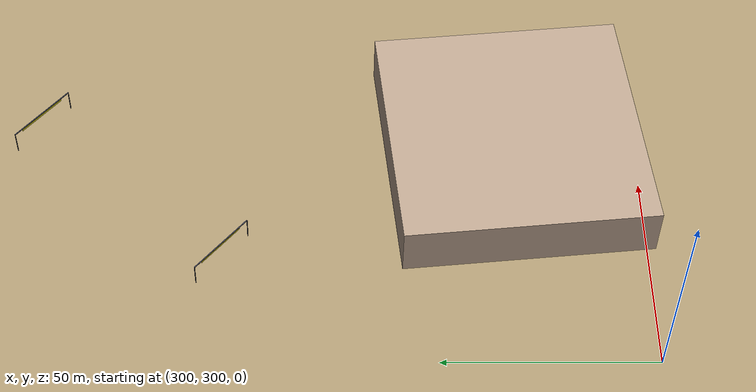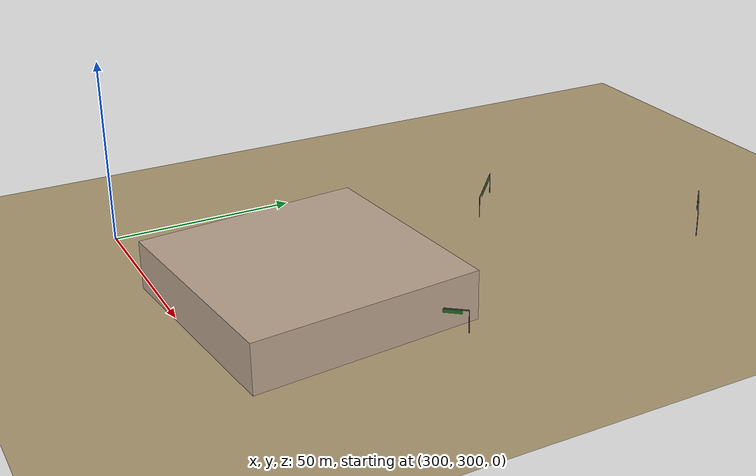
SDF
<sdf version="1.9">
 <world name="crossroad_world">
  <model name="ground_plane">
   <static>true</static>
   <pose>0 0 -0.05 0 0 0</pose>
   <link name="link">
    <collision name="collision">
     <geometry><plane><normal>0 0 1</normal><size>10000 10000</size></plane></geometry>
    </collision>
    <visual name="visual">
     <geometry><plane><normal>0 0 1</normal><size>15000 15000</size></plane></geometry>
     <material><ambient>0.68 0.60 0.45 1</ambient><diffuse>0.68 0.60 0.45 1</diffuse></material>
    </visual>
   </link>
  </model>
  <model name="gantry_83">
   <static>true</static>
   <pose>368.164 444.929 0 0 0 2.425</pose>
   <link name="link">
    <visual name="post_l">
     <pose>-8.900 0 2.925 0 0 0</pose>
     <geometry><cylinder><radius>0.1</radius><length>5.85</length></cylinder></geometry>
     <material><ambient>0.30 0.30 0.35 1</ambient><diffuse>0.30 0.30 0.35 1</diffuse></material>
    </visual>
    <visual name="post_r">
     <pose>8.900 0 2.925 0 0 0</pose>
     <geometry><cylinder><radius>0.1</radius><length>5.85</length></cylinder></geometry>
     <material><ambient>0.30 0.30 0.35 1</ambient><diffuse>0.30 0.30 0.35 1</diffuse></material>
    </visual>
    <visual name="beam">
     <pose>0 0 6.000 0 0 0</pose>
     <geometry><box><size>17.800 0.22 0.22</size></box></geometry>
     <material><ambient>0.30 0.30 0.35 1</ambient><diffuse>0.30 0.30 0.35 1</diffuse></material>
    </visual>
    <visual name="sign_border">
     <pose>0 -0.14 5.450 0 0 0</pose>
     <geometry><box><size>12.896 0.04 0.92</size></box></geometry>
     <material><ambient>0.90 0.85 0.10 1</ambient><diffuse>0.90 0.85 0.10 1</diffuse></material>
    </visual>
    <visual name="sign_panel">
     <pose>0 -0.15 5.450 0 0 0</pose>
     <geometry><box><size>12.816 0.05 0.86</size></box></geometry>
     <material><ambient>0.05 0.38 0.10 1</ambient><diffuse>0.05 0.38 0.10 1</diffuse></material>
    </visual>
    <collision name="col_post_l">
     <pose>-8.900 0 2.925 0 0 0</pose>
     <geometry><cylinder><radius>0.1</radius><length>5.85</length></cylinder></geometry>
    </collision>
    <collision name="col_post_r">
     <pose>8.900 0 2.925 0 0 0</pose>
     <geometry><cylinder><radius>0.1</radius><length>5.85</length></cylinder></geometry>
    </collision>
    <collision name="col_beam">
     <pose>0 0 6.000 0 0 0</pose>
     <geometry><box><size>17.800 0.22 0.22</size></box></geometry>
    </collision>
   </link>
  </model>
  <model name="gantry_84">
   <static>true</static>
   <pose>328.745 399.695 0 0 0 2.425</pose>
   <link name="link">
    <visual name="post_l">
     <pose>-8.900 0 2.925 0 0 0</pose>
     <geometry><cylinder><radius>0.1</radius><length>5.85</length></cylinder></geometry>
     <material><ambient>0.30 0.30 0.35 1</ambient><diffuse>0.30 0.30 0.35 1</diffuse></material>
    </visual>
    <visual name="post_r">
     <pose>8.900 0 2.925 0 0 0</pose>
     <geometry><cylinder><radius>0.1</radius><length>5.85</length></cylinder></geometry>
     <material><ambient>0.30 0.30 0.35 1</ambient><diffuse>0.30 0.30 0.35 1</diffuse></material>
    </visual>
    <visual name="beam">
     <pose>0 0 6.000 0 0 0</pose>
     <geometry><box><size>17.800 0.22 0.22</size></box></geometry>
     <material><ambient>0.30 0.30 0.35 1</ambient><diffuse>0.30 0.30 0.35 1</diffuse></material>
    </visual>
    <visual name="sign_border">
     <pose>0 -0.14 5.450 0 0 0</pose>
     <geometry><box><size>12.896 0.04 0.92</size></box></geometry>
     <material><ambient>0.90 0.85 0.10 1</ambient><diffuse>0.90 0.85 0.10 1</diffuse></material>
    </visual>
    <visual name="sign_panel">
     <pose>0 -0.15 5.450 0 0 0</pose>
     <geometry><box><size>12.816 0.05 0.86</size></box></geometry>
     <material><ambient>0.05 0.38 0.10 1</ambient><diffuse>0.05 0.38 0.10 1</diffuse></material>
    </visual>
    <collision name="col_post_l">
     <pose>-8.900 0 2.925 0 0 0</pose>
     <geometry><cylinder><radius>0.1</radius><length>5.85</length></cylinder></geometry>
    </collision>
    <collision name="col_post_r">
     <pose>8.900 0 2.925 0 0 0</pose>
     <geometry><cylinder><radius>0.1</radius><length>5.85</length></cylinder></geometry>
    </collision>
    <collision name="col_beam">
     <pose>0 0 6.000 0 0 0</pose>
     <geometry><box><size>17.800 0.22 0.22</size></box></geometry>
    </collision>
   </link>
  </model>
  <model name="gantry_115">
   <static>true</static>
   <pose>386.689 353.394 0 0 0 0.883</pose>
   <link name="link">
    <visual name="post_l">
     <pose>-5.700 0 2.925 0 0 0</pose>
     <geometry><cylinder><radius>0.1</radius><length>5.85</length></cylinder></geometry>
     <material><ambient>0.30 0.30 0.35 1</ambient><diffuse>0.30 0.30 0.35 1</diffuse></material>
    </visual>
    <visual name="post_r">
     <pose>5.700 0 2.925 0 0 0</pose>
     <geometry><cylinder><radius>0.1</radius><length>5.85</length></cylinder></geometry>
     <material><ambient>0.30 0.30 0.35 1</ambient><diffuse>0.30 0.30 0.35 1</diffuse></material>
    </visual>
    <visual name="beam">
     <pose>0 0 6.000 0 0 0</pose>
     <geometry><box><size>11.400 0.22 0.22</size></box></geometry>
     <material><ambient>0.30 0.30 0.35 1</ambient><diffuse>0.30 0.30 0.35 1</diffuse></material>
    </visual>
    <visual name="sign_border">
     <pose>0 -0.14 5.450 0 0 0</pose>
     <geometry><box><size>8.288 0.04 0.92</size></box></geometry>
     <material><ambient>0.90 0.85 0.10 1</ambient><diffuse>0.90 0.85 0.10 1</diffuse></material>
    </visual>
    <visual name="sign_panel">
     <pose>0 -0.15 5.450 0 0 0</pose>
     <geometry><box><size>8.208 0.05 0.86</size></box></geometry>
     <material><ambient>0.05 0.38 0.10 1</ambient><diffuse>0.05 0.38 0.10 1</diffuse></material>
    </visual>
    <collision name="col_post_l">
     <pose>-5.700 0 2.925 0 0 0</pose>
     <geometry><cylinder><radius>0.1</radius><length>5.85</length></cylinder></geometry>
    </collision>
    <collision name="col_post_r">
     <pose>5.700 0 2.925 0 0 0</pose>
     <geometry><cylinder><radius>0.1</radius><length>5.85</length></cylinder></geometry>
    </collision>
    <collision name="col_beam">
     <pose>0 0 6.000 0 0 0</pose>
     <geometry><box><size>11.400 0.22 0.22</size></box></geometry>
    </collision>
   </link>
  </model>
  <model name="building_601">
   <static>true</static>
   <pose>358.436 330.528 6.493 0 0 0.094</pose>
   <link name="link">
    <visual name="body">
     <geometry><box><size>60.00 60.00 12.99</size></box></geometry>
     <material><ambient>0.73 0.64 0.56 1</ambient><diffuse>0.73 0.64 0.56 1</diffuse></material>
    </visual>
    <collision name="col"><geometry><box><size>60.00 60.00 12.99</size></box></geometry></collision>
   </link>
  </model>
 </world>
</sdf>
